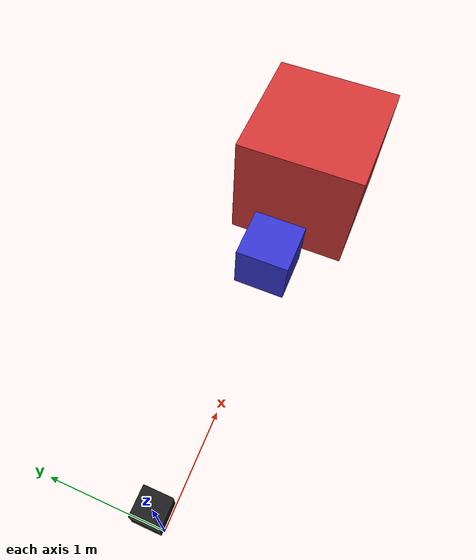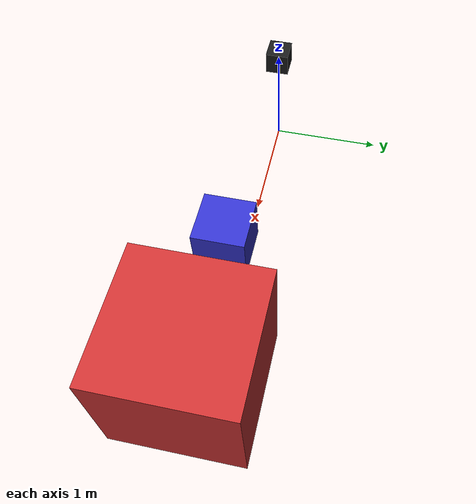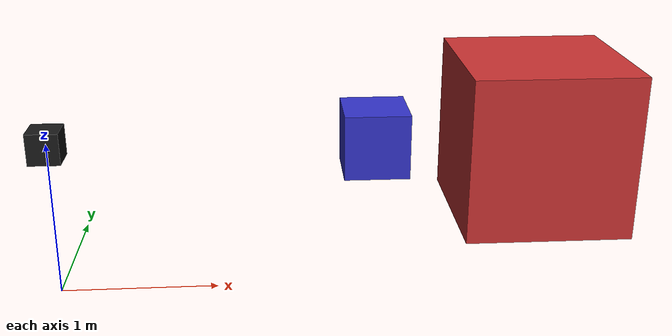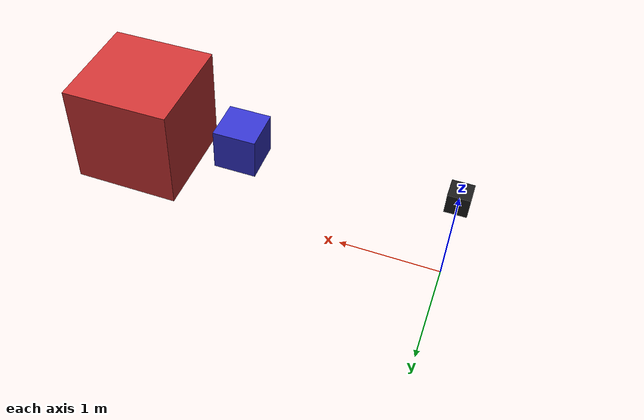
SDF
<?xml version="1.0" ?>
<sdf version="1.9">
  <world name="default">
    <plugin
      filename="gz-sim-physics-system"
      name="gz::sim::systems::Physics" />
    <plugin
      filename="gz-sim-user-commands-system"
      name="gz::sim::systems::UserCommands" />
    <plugin
      filename="gz-sim-scene-broadcaster-system"
      name="gz::sim::systems::SceneBroadcaster" />

    <plugin name="rmagine_embree_map_system" filename="librmagine_embree_map_system.so">
      <ignore_model>sensor_model</ignore_model>
      <ignore_link>multi_link_target::shadow_link</ignore_link>
      <update>
        <rate_limit>30</rate_limit>
        <delta_trans>0.001</delta_trans>
        <delta_rot>0.001</delta_rot>
        <delta_scale>0.001</delta_scale>
      </update>
    </plugin>

    <plugin name="rmagine_embree_sensor_system" filename="librmagine_embree_sensor_system.so"/>

    <light name="sun" type="directional">
      <cast_shadows>true</cast_shadows>
      <pose>0 0 10 0 0 0</pose>
      <diffuse>0.8 0.8 0.8 1</diffuse>
      <specular>0.2 0.2 0.2 1</specular>
      <direction>-0.5 0.1 -0.9</direction>
    </light>

    <model name="multi_link_target">
      <static>true</static>
      <pose>0 0 1 0 0 0</pose>
      <link name="shadow_link">
        <pose>2 0 0 0 0 0</pose>
        <visual name="visual">
          <geometry>
            <box>
              <size>0.4 0.4 0.4</size>
            </box>
          </geometry>
          <material>
            <ambient>0.2 0.2 0.8 1</ambient>
            <diffuse>0.2 0.2 0.8 1</diffuse>
          </material>
        </visual>
      </link>
      <link name="real_link">
        <pose>3 0 0 0 0 0</pose>
        <visual name="visual">
          <geometry>
            <box>
              <size>1 1 1</size>
            </box>
          </geometry>
          <material>
            <ambient>0.8 0.2 0.2 1</ambient>
            <diffuse>0.8 0.2 0.2 1</diffuse>
          </material>
        </visual>
      </link>
    </model>

    <model name="sensor_model">
      <static>true</static>
      <pose>0 0 1 0 0 0</pose>
      <link name="sensor_link">
        <sensor name="sensor_model_sensor" type="custom" gz:type="rmagine_embree">
          <map_key>default</map_key>
          <frame>sensor_link</frame>
          <topic_scan>scan</topic_scan>
          <topic_points>points</topic_points>
          <update_rate>5</update_rate>
          <scan>
            <horizontal>
              <min_angle>-1.0472</min_angle>
              <increment>0.0052486216</increment>
              <samples>400</samples>
            </horizontal>
          </scan>
          <range_min>0.2</range_min>
          <range_max>50.0</range_max>
        </sensor>
        <visual name="sensor_visual">
          <geometry>
            <box>
              <size>0.2 0.2 0.2</size>
            </box>
          </geometry>
          <material>
            <ambient>0.1 0.1 0.1 1</ambient>
            <diffuse>0.1 0.1 0.1 1</diffuse>
          </material>
        </visual>
      </link>
    </model>
  </world>
</sdf>
